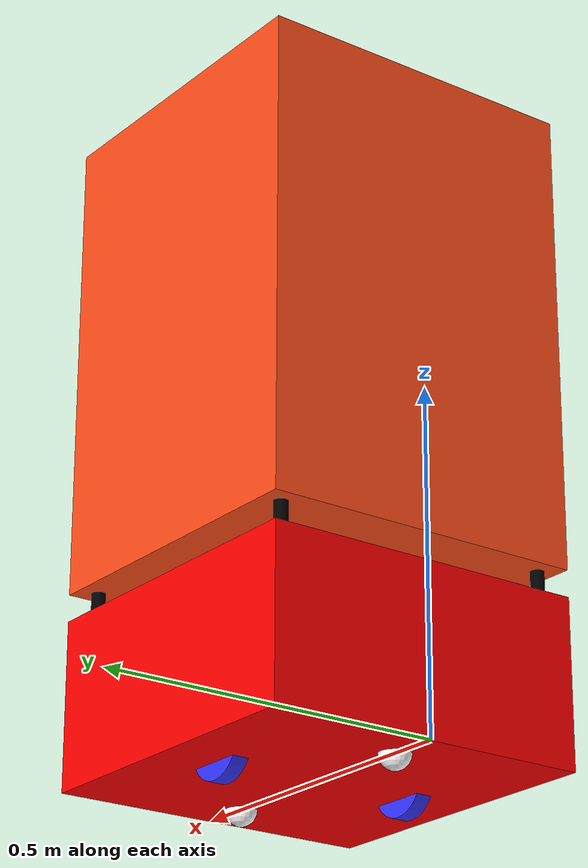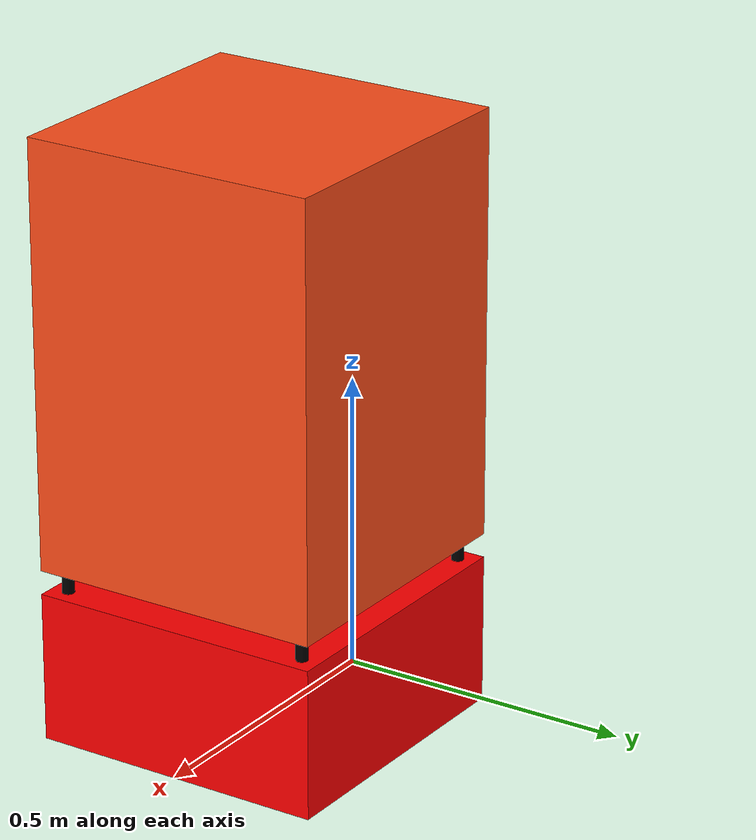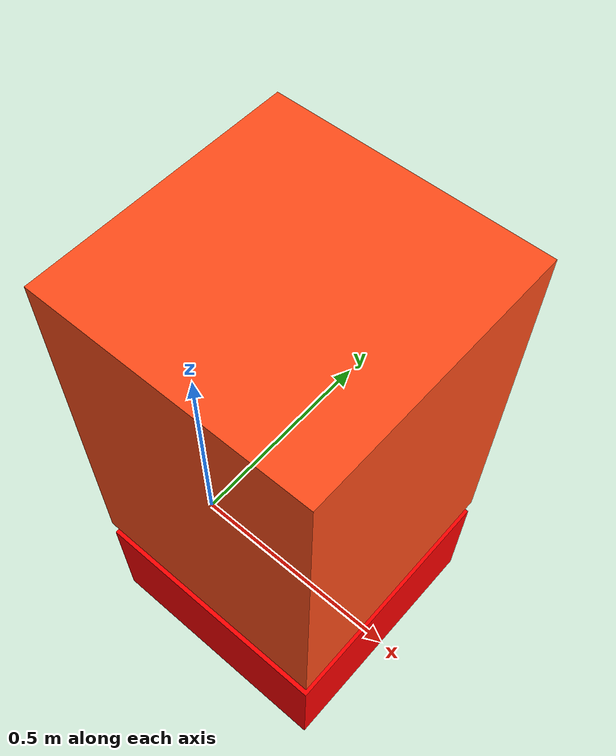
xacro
<?xml version="1.0"?>
<robot xmlns:xacro="http://www.ros.org/wiki/xacro"  name="robot">

    <xacro:arg name="use_ros2_control" default="true"/>
    <xacro:arg name="sim_mode" default="false"/>

    <xacro:include filename="robot_core.xacro" />

    <xacro:if value="$(arg use_ros2_control)">
        <xacro:include filename="ros2_control.xacro" />
    </xacro:if>
    <xacro:unless value="$(arg use_ros2_control)">
        <xacro:include filename="gazebo_control.xacro" />
    </xacro:unless>
    <xacro:include filename="lidar.xacro" />

</robot>

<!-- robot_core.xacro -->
<robot xmlns:xacro="http://www.ros.org/wiki/xacro" >

    <xacro:include filename="inertial_macros.xacro"/>

    <xacro:property name="chassis_length" value="0.5"/>
    <xacro:property name="chassis_width" value="0.5"/>
    <xacro:property name="chassis_height" value="0.25"/>
    <xacro:property name="chassis_mass" value="2.0"/>
    <xacro:property name="wheel_radius" value="0.05"/>
    <xacro:property name="wheel_thickness" value="0.025"/>
    <xacro:property name="wheel_mass" value="0.05"/>
    <xacro:property name="wheel_offset_x" value="0.25"/>
    <xacro:property name="wheel_offset_y" value="0.155"/>
    <xacro:property name="wheel_offset_z" value="0.055"/>
    <xacro:property name="caster_wheel_radius" value="0.023"/>
    <xacro:property name="caster_wheel_mass" value="0.01"/>
    <xacro:property name="caster_wheel_offset_x" value="0.425"/>
    <xacro:property name="caster_wheel_offset_z" value="0"/>

    <material name="white">
        <color rgba="1 1 1 1" />
    </material>

    <material name="orange">
        <color rgba="1 0.3 0.1 1"/>
    </material>

    <material name="blue">
        <color rgba="0.2 0.2 1 1"/>
    </material>

    <material name="black">
        <color rgba="0 0 0 1"/>
    </material>

    <material name="red">
        <color rgba="1 0 0 1"/>
    </material>

    <!-- BASE LINK -->

    <link name="base_link">

    </link>

    <!-- CHASSIS LINK -->

    <joint name="chassis_joint" type="fixed">
        <parent link="base_link"/>
        <child link="chassis"/>
        <origin xyz="0 0 0"/>
    </joint>

    <link name="chassis">
        <visual>
            <origin xyz="${chassis_length/2} 0 ${chassis_height/2}"/>
            <geometry>
                <box size="${chassis_length} ${chassis_width} ${chassis_height}"/>
            </geometry>
            <material name="red"/>
        </visual>
        <collision>
            <origin xyz="${chassis_length/2} 0 ${chassis_height/2}"/>
            <geometry>
                <box size="${chassis_length} ${chassis_width} ${chassis_height}"/>
            </geometry>
        </collision>
        <xacro:inertial_box mass="0.5" x="${chassis_length}" y="${chassis_width}" z="${chassis_height}">
            <origin xyz="${chassis_length/2} 0 ${chassis_height/2}" rpy="0 0 0"/>
        </xacro:inertial_box>
    </link>

    <gazebo reference="chassis">
        <material>Gazebo/Red</material>
    </gazebo>

    <!-- LEFT WHEEL LINK -->

    <joint name="left_wheel_joint" type="continuous">
        <parent link="base_link"/>
        <child link="left_wheel"/>
        <origin xyz="0.25 ${wheel_offset_y} 0.025" rpy="-${pi/2} 0 0" />
        <axis xyz="0 0 1"/>
    </joint>

    <link name="left_wheel">
        <visual>
            <geometry>
                <cylinder radius="${wheel_radius}" length="${wheel_thickness}"/>
            </geometry>
            <material name="blue"/>
        </visual>
        <collision>
            <geometry>
                <sphere radius="${wheel_radius}"/>
            </geometry>
        </collision>
        <xacro:inertial_cylinder mass="${wheel_mass}" length="${wheel_thickness}" radius="${wheel_radius}">
            <origin xyz="0 0 0" rpy="0 0 0"/>
        </xacro:inertial_cylinder>
    </link>

    <gazebo reference="left_wheel">
        <material>Gazebo/Blue</material>
    </gazebo>

    <!-- RIGHT WHEEL LINK -->

    <joint name="right_wheel_joint" type="continuous">
        <parent link="base_link"/>
        <child link="right_wheel"/>
        <origin xyz="0.25 ${-wheel_offset_y} 0.025" rpy="${pi/2} 0 0" />
        <axis xyz="0 0 -1"/>
    </joint>

    <link name="right_wheel">
        <visual>
            <geometry>
                <cylinder radius="${wheel_radius}" length="${wheel_thickness}"/>
            </geometry>
            <material name="blue"/>
        </visual>
        <collision>
            <geometry>
                <sphere radius="${wheel_radius}"/>
            </geometry>
        </collision>
        <xacro:inertial_cylinder mass="${wheel_mass}" length="${wheel_thickness}" radius="${wheel_radius}">
            <origin xyz="0 0 0" rpy="0 0 0"/>
        </xacro:inertial_cylinder>
    </link>

    <gazebo reference="right_wheel">
        <material>Gazebo/Blue</material>
    </gazebo>

    <!-- CASTER WHEEL LINK -->

    <joint name="caster_wheel_joint" type="fixed">
        <parent link="chassis"/>
        <child link="caster_wheel"/>
        <origin xyz="${caster_wheel_offset_x} 0 ${caster_wheel_offset_z}"/>
    </joint>

    <link name="caster_wheel">
        <visual>
            <geometry>
                <sphere radius="${caster_wheel_radius}"/>
            </geometry>
            <material name="white"/>
        </visual>
        <collision>
            <geometry>
                <sphere radius="${caster_wheel_radius}"/>
            </geometry>
        </collision>
        <xacro:inertial_sphere mass="${caster_wheel_mass}" radius="${caster_wheel_radius}">
            <origin xyz="0 0 0" rpy="0 0 0"/>
        </xacro:inertial_sphere>
    </link>

    <joint name="caster_wheel2_joint" type="fixed">
        <parent link="chassis"/>
        <child link="caster_wheel2"/>
        <origin xyz="0.075 0 ${caster_wheel_offset_z}"/>
    </joint>

    <link name="caster_wheel2">
        <visual>
            <geometry>
                <sphere radius="${caster_wheel_radius}"/>
            </geometry>
            <material name="white"/>
        </visual>
        <collision>
            <geometry>
                <sphere radius="${caster_wheel_radius}"/>
            </geometry>
        </collision>
        <xacro:inertial_sphere mass="${caster_wheel_mass}" radius="${caster_wheel_radius}">
            <origin xyz="0 0 0" rpy="0 0 0"/>
        </xacro:inertial_sphere>
    </link>

    <gazebo reference="caster_wheel">
        <material>Gazebo/White</material>
        <mu1 value="0.001"/>
        <mu2 value="0.001"/>
    </gazebo>

    <gazebo reference="caster_wheel2">
        <material>Gazebo/White</material>
        <mu1 value="0.001"/>
        <mu2 value="0.001"/>
    </gazebo>

<!-- Pillar4 -->

      <link name="pillar4_link">
        <visual>
              <geometry>
                  <cylinder radius="0.01" length="0.04"/>
              </geometry>
              <material name="black"/>
          </visual>
          <collision>
              <geometry>
                  <cylinder radius="0.01" length="0.04"/>
              </geometry>
          </collision>
        <xacro:inertial_cylinder mass="0.05" length="0.04" radius="0.01">
            <origin xyz="0 0 0" rpy="0 0 0"/>
        </xacro:inertial_cylinder>
      </link>

    <joint name="pillar4_joint" type="fixed">
          <parent link="chassis"/>
          <child link="pillar4_link"/>
          <origin xyz="0.47 -0.22 0.27" rpy="0 0 0"/>
    </joint>

<!-- Pillar3 -->

      <link name="pillar3_link">
        <visual>
              <geometry>
                  <cylinder radius="0.01" length="0.04"/>
              </geometry>
              <material name="black"/>
          </visual>
          <collision>
              <geometry>
                  <cylinder radius="0.01" length="0.04"/>
              </geometry>
          </collision>
        <xacro:inertial_cylinder mass="0.05" length="0.04" radius="0.01">
            <origin xyz="0 0 0" rpy="0 0 0"/>
        </xacro:inertial_cylinder>
      </link>

    <joint name="pillar3_joint" type="fixed">
          <parent link="chassis"/>
          <child link="pillar3_link"/>
          <origin xyz="0.03 0.22 0.27" rpy="0 0 0"/>
    </joint>

<!-- Pillar2 -->

      <link name="pillar2_link">
        <visual>
              <geometry>
                  <cylinder radius="0.01" length="0.04"/>
              </geometry>
              <material name="black"/>
          </visual>
          <collision>
              <geometry>
                  <cylinder radius="0.01" length="0.04"/>
              </geometry>
          </collision>
        <xacro:inertial_cylinder mass="0.05" length="0.04" radius="0.01">
            <origin xyz="0 0 0" rpy="0 0 0"/>
        </xacro:inertial_cylinder>
      </link>

    <joint name="pillar2_joint" type="fixed">
          <parent link="chassis"/>
          <child link="pillar2_link"/>
          <origin xyz="0.03 -0.22 0.27" rpy="0 0 0"/>
    </joint>

<!-- Pillar1 -->

      <link name="pillar1_link">
        <visual>
              <geometry>
                  <cylinder radius="0.01" length="0.04"/>
              </geometry>
              <material name="black"/>
          </visual>
          <collision>
              <geometry>
                  <cylinder radius="0.01" length="0.04"/>
              </geometry>
          </collision>
        <xacro:inertial_cylinder mass="0.05" length="0.04" radius="0.01">
            <origin xyz="0 0 0" rpy="0 0 0"/>
        </xacro:inertial_cylinder>
      </link>

    <joint name="pillar1_joint" type="fixed">
          <parent link="chassis"/>
          <child link="pillar1_link"/>
          <origin xyz="0.47 0.22 0.27" rpy="0 0 0"/>
    </joint>

 <!-- Upper LINK -->

    <joint name="upper_joint" type="fixed">
        <parent link="base_link"/>
        <child link="upper"/>
        <origin xyz="0 0 0"/>
    </joint>

    <link name="upper">
        <visual>
            <origin xyz="${chassis_length/2}  0 0.645"/>
            <geometry>
                <box size="${chassis_length} ${chassis_width} 0.71"/>
            </geometry>
            <material name="orange"/>
        </visual>
        <collision>
            <origin xyz="${chassis_length/2} 0 0.645"/>
            <geometry>
                <box size="${chassis_length} ${chassis_width} 0.71"/>
            </geometry>
        </collision>
        <xacro:inertial_box mass="0.5" x="${chassis_length}" y="${chassis_width}" z="0.71">
            <origin xyz="${chassis_length/2} 0 0.645" rpy="0 0 0"/>
        </xacro:inertial_box>
    </link>

    <gazebo reference="upper">
        <material>Gazebo/Orange</material>
    </gazebo>

</robot>

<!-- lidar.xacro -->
<robot xmlns:xacro="http://www.ros.org/wiki/xacro" >

    <joint name="laser_joint" type="fixed">
        <parent link="chassis"/>
        <child link="laser_frame"/>
        <origin xyz="0.25 0 0.25925" rpy="0 0 0"/>
    </joint>

    <link name="laser_frame">
         <visual>
            <geometry>
                <cylinder radius="0.05" length="0.04"/>
            </geometry>
            <material name="black"/>
        </visual>
        <collision>
            <geometry>
                <cylinder radius="0.05" length="0.04"/>
            </geometry>
        </collision>
        <xacro:inertial_cylinder mass="0.1" length="0.04" radius="0.05">
            <origin xyz="0 0 0" rpy="0 0 0"/>
        </xacro:inertial_cylinder>
    </link>

    <gazebo reference="laser_frame">
        <material>Gazebo/Black</material>

        <sensor name="laser" type="ray">
            <pose> 0 0 0 0 0 0 </pose>
            <visualize>true</visualize>
            <update_rate>10</update_rate>
            <ray>
                <scan>
                    <horizontal>
                        <samples>360</samples>
                        <min_angle>-3.14</min_angle>
                        <max_angle>3.14</max_angle>
                    </horizontal>
                </scan>
                <range>
                    <min>0.35</min>
                    <max>12</max>
                </range>
            </ray>
            <plugin name="laser_controller" filename="libgazebo_ros_ray_sensor.so">
                <ros>
                    <argument>~/out:=scan</argument>
                </ros>
                <output_type>sensor_msgs/LaserScan</output_type>
                <frame_name>laser_frame</frame_name>
            </plugin>
        </sensor>
    </gazebo>

</robot>
